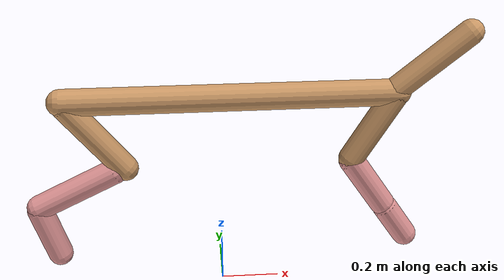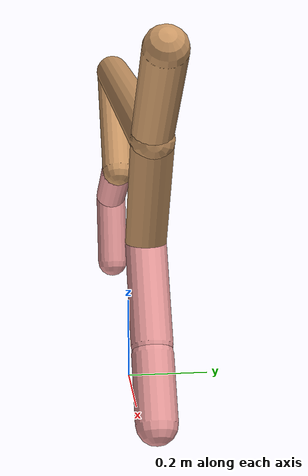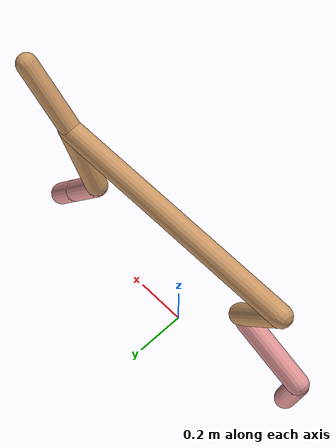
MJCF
<mujoco model="cheetah">
  <compiler angle="radian" coordinate="local" inertiafromgeom="true" settotalmass="14" />
  <default>
    <joint armature=".1" damping=".01" limited="true" solimplimit="0 .8 .03" solreflimit=".02 1" stiffness="8" />
    <geom conaffinity="0" condim="3" contype="1" friction="0.8 .1 .1" rgba="0.8 0.6 .4 1" solimp="0.0 0.8 0.01" solref="0.02 1" />
    <motor ctrllimited="true" ctrlrange="-1 1" />
  </default>
  <size nstack="300000" nuser_geom="1" />
  <option gravity="0 0 -9.81" timestep="0.01" />
  <worldbody>
    <body name="torso" pos="0.0 0.0 0.7108149712989726">
      <joint armature="0" axis="1 0 0" damping="0" limited="false" name="ignorex" pos="0 0 0" stiffness="0" type="slide" />
      <joint armature="0" axis="0 0 1" damping="0" limited="false" name="ignorez" pos="0 0 0" stiffness="0" type="slide" />
      <joint armature="0" axis="0 1 0" damping="0" limited="false" name="ignorey" pos="0 0 0" stiffness="0" type="hinge" />
      <geom fromto="-0.5 0.0 0.0 0.57989444761989 0.0 0.0" name="torso" size="0.04416584197185656" type="capsule" />
      <geom axisangle="0 1 0 .87" name="head" pos="0.6798944476198899 0.0 0.1" size="0.041889963842156236 0.15" type="capsule" />

      <body name="bthigh" pos="-.5 0 0">
        <joint axis="0 1 0" damping="6" name="bthigh" pos="0 0 0" range="-.52 1.05" stiffness="240" type="hinge" />
        <geom axisangle="0 1 0 -3.8" name="bthigh" pos="0.09895380277497223 0.0 -0.1286399436074639" size="0.042477710744116035 0.1432841089706703" type="capsule" />
        <body name="bshin" pos="0.15790760554994446 0.0 -0.24727988721492777">
          <joint axis="0 1 0" damping="4.5" name="bshin" pos="0 0 0" range="-.785 .785" stiffness="180" type="hinge" />
          <geom axisangle="0 1 0 -2.03" name="bshin" pos="-0.138412338351629 0.0 -0.0692061691758145" rgba="0.9 0.6 0.6 1" size="0.042477710744116035 0.14822494031448652" type="capsule" />
          <body name="bfoot" pos="-0.276824676703258 0.0 -0.138412338351629">
            <joint axis="0 1 0" damping="3" name="bfoot" pos="0 0 0" range="-.4 .785" stiffness="120" type="hinge" />
            <geom axisangle="0 1 0 -.27" name="bfoot" pos="0.029671328126772083 0.0 -0.09593729427656307" rgba="0.9 0.6 0.6 1" size="0.042477710744116035 0.09288762926374489" type="capsule" />
            <inertial mass="10" />
          </body>
        </body>
      </body>
      <body name="fthigh" pos="0.57989444761989 0.0 0.0">
        <joint axis="0 1 0" damping="4.5" name="fthigh" pos="0 0 0" range="-1.5 0.8" stiffness="180" type="hinge" />
        <geom axisangle="0 1 0 .52" name="fthigh" pos="-0.07075812096272363 0.0 -0.12129963593609763" size="0.043212524682855226 0.13450459328740938" type="capsule" />
        <body name="fshin" pos="-0.14151624192544726 0.0 -0.24259927187219527">
          <joint axis="0 1 0" damping="3" name="fshin" pos="0 0 0" range="-1.2 1.1" stiffness="120" type="hinge" />
          <geom axisangle="0 1 0 -.6" name="fshin" pos="0.06570209072675577 0.0 -0.09097212562166182" rgba="0.9 0.6 0.6 1" size="0.043212524682855226 0.10719914953733377" type="capsule" />
          <body name="ffoot" pos="0.13140418145351154 0.0 -0.18194425124332364">
            <joint axis="0 1 0" damping="1.5" name="ffoot" pos="0 0 0" range="-3.1 -0.3" stiffness="60" type="hinge" />
            <geom axisangle="0 1 0 -.6" name="ffoot" pos="0.04542822118000313 0.0 -0.07066612183556044" rgba="0.9 0.6 0.6 1" size="0.043212524682855226 0.07079189120389967" type="capsule" />
            <inertial mass="10" />
          </body>
        </body>
      </body>
    </body>
  </worldbody>
  <actuator>
    <motor gear="120" joint="bthigh" name="bthigh" />
    <motor gear="90" joint="bshin" name="bshin" />
    <motor gear="60" joint="bfoot" name="bfoot" />
    <motor gear="120" joint="fthigh" name="fthigh" />
    <motor gear="60" joint="fshin" name="fshin" />
    <motor gear="30" joint="ffoot" name="ffoot" />
  </actuator>
</mujoco>
